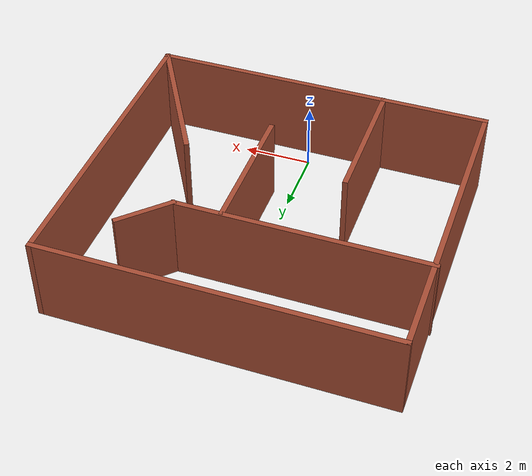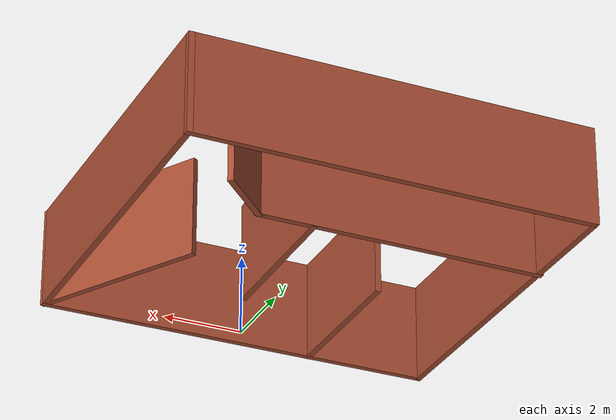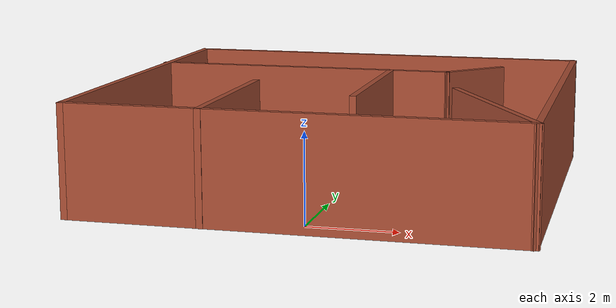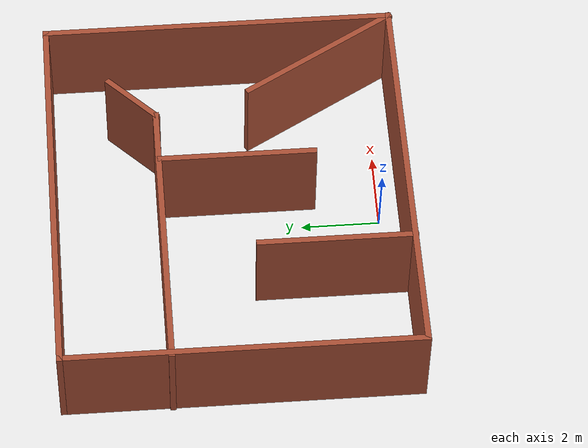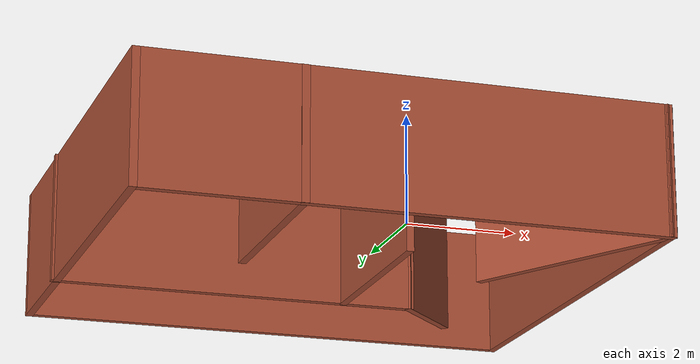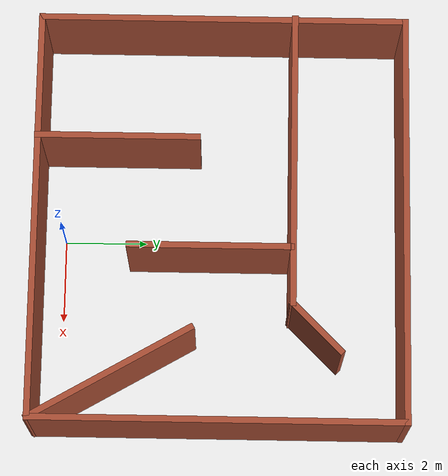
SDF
<?xml version='1.0'?>
<sdf version='1.7'>
  <model name='myhouse2.world'>
    <pose>-0.148852 3.81679 0 0 -0 0</pose>
    <link name='Wall_11'>
      <collision name='Wall_11_Collision'>
        <geometry>
          <box>
            <size>4 0.15 2.5</size>
          </box>
        </geometry>
        <pose>0 0 1.25 0 -0 0</pose>
      </collision>
      <visual name='Wall_11_Visual'>
        <pose>0 0 1.25 0 -0 0</pose>
        <geometry>
          <box>
            <size>4 0.15 2.5</size>
          </box>
        </geometry>
        <material>
          <script>
            <uri>file://media/materials/scripts/gazebo.material</uri>
            <name>Gazebo/Bricks</name>
          </script>
          <ambient>1 1 1 1</ambient>
        </material>
        <meta>
          <layer>0</layer>
        </meta>
      </visual>
      <pose>-1.90862 -2.4953 0 0 -0 1.5708</pose>
    </link>
    <link name='Wall_14'>
      <collision name='Wall_14_Collision'>
        <geometry>
          <box>
            <size>4 0.15 2.5</size>
          </box>
        </geometry>
        <pose>0 0 1.25 0 -0 0</pose>
      </collision>
      <visual name='Wall_14_Visual'>
        <pose>0 0 1.25 0 -0 0</pose>
        <geometry>
          <box>
            <size>4 0.15 2.5</size>
          </box>
        </geometry>
        <material>
          <script>
            <uri>file://media/materials/scripts/gazebo.material</uri>
            <name>Gazebo/Bricks</name>
          </script>
          <ambient>1 1 1 1</ambient>
        </material>
        <meta>
          <layer>0</layer>
        </meta>
      </visual>
      <pose>0.774534 -0.215686 0 0 -0 -1.5708</pose>
    </link>
    <link name='Wall_17'>
      <collision name='Wall_17_Collision'>
        <geometry>
          <box>
            <size>4.5 0.15 2.5</size>
          </box>
        </geometry>
        <pose>0 0 1.25 0 -0 0</pose>
      </collision>
      <visual name='Wall_17_Visual'>
        <pose>0 0 1.25 0 -0 0</pose>
        <geometry>
          <box>
            <size>4.5 0.15 2.5</size>
          </box>
        </geometry>
        <material>
          <script>
            <uri>file://media/materials/scripts/gazebo.material</uri>
            <name>Gazebo/Bricks</name>
          </script>
          <ambient>1 1 1 1</ambient>
        </material>
        <meta>
          <layer>0</layer>
        </meta>
      </visual>
      <pose>3.84691 -2.52767 0 0 -0 2.0944</pose>
    </link>
    <link name='Wall_19'>
      <collision name='Wall_19_Collision'>
        <geometry>
          <box>
            <size>1.75 0.15 2.5</size>
          </box>
        </geometry>
        <pose>0 0 1.25 0 -0 0</pose>
      </collision>
      <visual name='Wall_19_Visual'>
        <pose>0 0 1.25 0 -0 0</pose>
        <geometry>
          <box>
            <size>1.75 0.15 2.5</size>
          </box>
        </geometry>
        <material>
          <script>
            <uri>file://media/materials/scripts/gazebo.material</uri>
            <name>Gazebo/Bricks</name>
          </script>
          <ambient>1 1 1 1</ambient>
        </material>
        <meta>
          <layer>0</layer>
        </meta>
      </visual>
      <pose>2.70383 2.32126 0 0 -0 0.785398</pose>
    </link>
    <link name='Wall_2'>
      <collision name='Wall_2_Collision'>
        <geometry>
          <box>
            <size>9 0.15 2.5</size>
          </box>
        </geometry>
        <pose>0 0 1.25 0 -0 0</pose>
      </collision>
      <visual name='Wall_2_Visual'>
        <pose>0 0 1.25 0 -0 0</pose>
        <geometry>
          <box>
            <size>9 0.15 2.5</size>
          </box>
        </geometry>
        <material>
          <script>
            <uri>file://media/materials/scripts/gazebo.material</uri>
            <name>Gazebo/Bricks</name>
          </script>
          <ambient>1 1 1 1</ambient>
        </material>
        <meta>
          <layer>0</layer>
        </meta>
      </visual>
      <pose>-4.91559 0.013726 0 0 -0 -1.5708</pose>
    </link>
    <link name='Wall_3'>
      <collision name='Wall_3_Collision'>
        <geometry>
          <box>
            <size>10 0.15 2.5</size>
          </box>
        </geometry>
        <pose>0 0 1.25 0 -0 0</pose>
      </collision>
      <visual name='Wall_3_Visual'>
        <pose>0 0 1.25 0 -0 0</pose>
        <geometry>
          <box>
            <size>10 0.15 2.5</size>
          </box>
        </geometry>
        <material>
          <script>
            <uri>file://media/materials/scripts/gazebo.material</uri>
            <name>Gazebo/Bricks</name>
          </script>
          <ambient>1 1 1 1</ambient>
        </material>
        <meta>
          <layer>0</layer>
        </meta>
      </visual>
      <pose>0.009405 -4.41127 0 0 -0 0</pose>
    </link>
    <link name='Wall_4'>
      <collision name='Wall_4_Collision'>
        <geometry>
          <box>
            <size>9 0.15 2.5</size>
          </box>
        </geometry>
        <pose>0 0 1.25 0 -0 0</pose>
      </collision>
      <visual name='Wall_4_Visual'>
        <pose>0 0 1.25 0 -0 0</pose>
        <geometry>
          <box>
            <size>9 0.15 2.5</size>
          </box>
        </geometry>
        <material>
          <script>
            <uri>file://media/materials/scripts/gazebo.material</uri>
            <name>Gazebo/Bricks</name>
          </script>
          <ambient>1 1 1 1</ambient>
        </material>
        <meta>
          <layer>0</layer>
        </meta>
      </visual>
      <pose>4.9344 0.013726 0 0 -0 1.5708</pose>
    </link>
    <link name='Wall_5'>
      <collision name='Wall_5_Collision'>
        <geometry>
          <box>
            <size>10 0.15 2.5</size>
          </box>
        </geometry>
        <pose>0 0 1.25 0 -0 0</pose>
      </collision>
      <visual name='Wall_5_Visual'>
        <pose>0 0 1.25 0 -0 0</pose>
        <geometry>
          <box>
            <size>10 0.15 2.5</size>
          </box>
        </geometry>
        <material>
          <script>
            <uri>file://media/materials/scripts/gazebo.material</uri>
            <name>Gazebo/Bricks</name>
          </script>
          <ambient>1 1 1 1</ambient>
        </material>
        <meta>
          <layer>0</layer>
        </meta>
      </visual>
      <pose>0.009405 4.43872 0 0 -0 3.14159</pose>
    </link>
    <link name='Wall_7'>
      <collision name='Wall_7_Collision'>
        <geometry>
          <box>
            <size>7.25 0.15 2.5</size>
          </box>
        </geometry>
        <pose>0 0 1.25 0 -0 0</pose>
      </collision>
      <visual name='Wall_7_Visual'>
        <pose>0 0 1.25 0 -0 0</pose>
        <geometry>
          <box>
            <size>7.25 0.15 2.5</size>
          </box>
        </geometry>
        <material>
          <script>
            <uri>file://media/materials/scripts/gazebo.material</uri>
            <name>Gazebo/Bricks</name>
          </script>
          <ambient>1 1 1 1</ambient>
        </material>
        <meta>
          <layer>0</layer>
        </meta>
      </visual>
      <pose>-1.41186 1.75558 0 0 -0 0</pose>
    </link>
    <static>1</static>
  </model>
</sdf>
